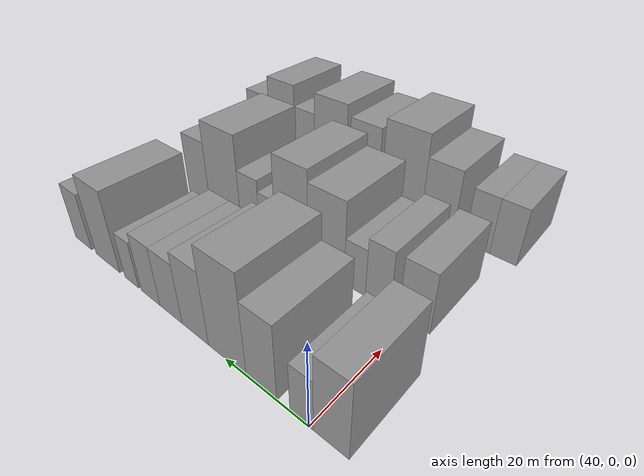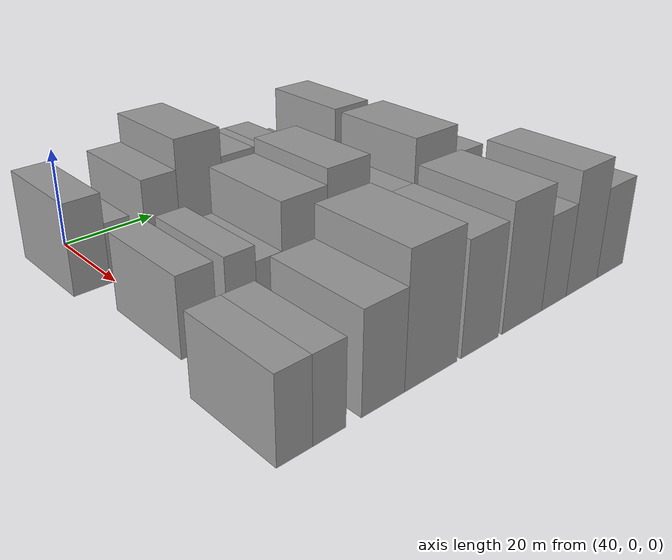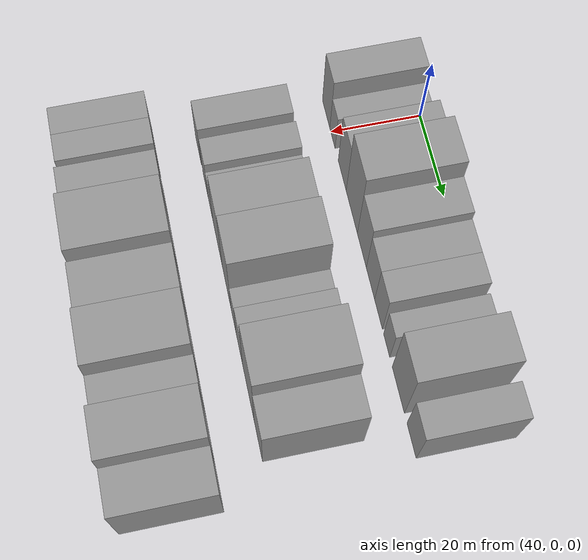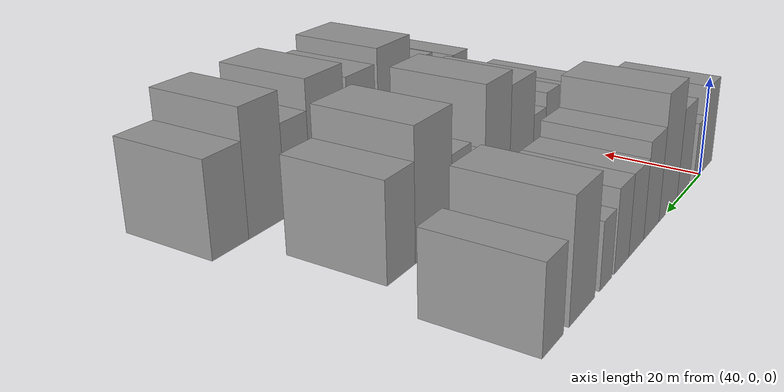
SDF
<sdf version="1.6">
 <world name="default">
  <model name="building_40">
   <static>1</static>
   <pose>50.0000 -4.5545 0 0.000000 0.000000 0.000000</pose>
   <link name="link">
    <pose>0 0 9.00 0 0 0</pose>
    <collision name="collision"><geometry><box><size>20.0000 7.2465 18.0000</size></box></geometry></collision>
    <visual name="visual">
     <cast_shadows>0</cast_shadows>
     <geometry><box><size>20.0000 7.2465 18.0000</size></box></geometry>
     <material>
      <script>
       <uri>model://grey_wall/materials/scripts</uri>
       <uri>model://grey_wall/materials/textures</uri>
       <name>vrc/grey_wall</name>
      </script>
     </material>
    </visual>
   </link>
  </model>
  <model name="building_41">
   <static>1</static>
   <pose>50.0000 1.6012 0 0.000000 0.000000 0.000000</pose>
   <link name="link">
    <pose>0 0 6.00 0 0 0</pose>
    <collision name="collision"><geometry><box><size>20.0000 5.0649 12.0000</size></box></geometry></collision>
    <visual name="visual">
     <cast_shadows>0</cast_shadows>
     <geometry><box><size>20.0000 5.0649 12.0000</size></box></geometry>
     <material>
      <script>
       <uri>model://grey_wall/materials/scripts</uri>
       <uri>model://grey_wall/materials/textures</uri>
       <name>vrc/grey_wall</name>
      </script>
     </material>
    </visual>
   </link>
  </model>
  <model name="building_42">
   <static>1</static>
   <pose>50.0000 10.8455 0 0.000000 0.000000 0.000000</pose>
   <link name="link">
    <pose>0 0 9.00 0 0 0</pose>
    <collision name="collision"><geometry><box><size>20.0000 7.4237 18.0000</size></box></geometry></collision>
    <visual name="visual">
     <cast_shadows>0</cast_shadows>
     <geometry><box><size>20.0000 7.4237 18.0000</size></box></geometry>
     <material>
      <script>
       <uri>model://grey_wall/materials/scripts</uri>
       <uri>model://grey_wall/materials/textures</uri>
       <name>vrc/grey_wall</name>
      </script>
     </material>
    </visual>
   </link>
  </model>
  <model name="building_43">
   <static>1</static>
   <pose>50.0000 19.6524 0 0.000000 0.000000 0.000000</pose>
   <link name="link">
    <pose>0 0 12.00 0 0 0</pose>
    <collision name="collision"><geometry><box><size>20.0000 10.1900 24.0000</size></box></geometry></collision>
    <visual name="visual">
     <cast_shadows>0</cast_shadows>
     <geometry><box><size>20.0000 10.1900 24.0000</size></box></geometry>
     <material>
      <script>
       <uri>model://grey_wall/materials/scripts</uri>
       <uri>model://grey_wall/materials/textures</uri>
       <name>vrc/grey_wall</name>
      </script>
     </material>
    </visual>
   </link>
  </model>
  <model name="building_44">
   <static>1</static>
   <pose>50.0000 28.7017 0 0.000000 0.000000 0.000000</pose>
   <link name="link">
    <pose>0 0 9.00 0 0 0</pose>
    <collision name="collision"><geometry><box><size>20.0000 7.9085 18.0000</size></box></geometry></collision>
    <visual name="visual">
     <cast_shadows>0</cast_shadows>
     <geometry><box><size>20.0000 7.9085 18.0000</size></box></geometry>
     <material>
      <script>
       <uri>model://grey_wall/materials/scripts</uri>
       <uri>model://grey_wall/materials/textures</uri>
       <name>vrc/grey_wall</name>
      </script>
     </material>
    </visual>
   </link>
  </model>
  <model name="building_45">
   <static>1</static>
   <pose>50.0000 36.2491 0 0.000000 0.000000 0.000000</pose>
   <link name="link">
    <pose>0 0 7.50 0 0 0</pose>
    <collision name="collision"><geometry><box><size>20.0000 7.1863 15.0000</size></box></geometry></collision>
    <visual name="visual">
     <cast_shadows>0</cast_shadows>
     <geometry><box><size>20.0000 7.1863 15.0000</size></box></geometry>
     <material>
      <script>
       <uri>model://grey_wall/materials/scripts</uri>
       <uri>model://grey_wall/materials/textures</uri>
       <name>vrc/grey_wall</name>
      </script>
     </material>
    </visual>
   </link>
  </model>
  <model name="building_46">
   <static>1</static>
   <pose>50.0000 43.0937 0 0.000000 0.000000 0.000000</pose>
   <link name="link">
    <pose>0 0 7.50 0 0 0</pose>
    <collision name="collision"><geometry><box><size>20.0000 6.5029 15.0000</size></box></geometry></collision>
    <visual name="visual">
     <cast_shadows>0</cast_shadows>
     <geometry><box><size>20.0000 6.5029 15.0000</size></box></geometry>
     <material>
      <script>
       <uri>model://grey_wall/materials/scripts</uri>
       <uri>model://grey_wall/materials/textures</uri>
       <name>vrc/grey_wall</name>
      </script>
     </material>
    </visual>
   </link>
  </model>
  <model name="building_47">
   <static>1</static>
   <pose>50.0000 49.8750 0 0.000000 0.000000 0.000000</pose>
   <link name="link">
    <pose>0 0 6.00 0 0 0</pose>
    <collision name="collision"><geometry><box><size>20.0000 5.0597 12.0000</size></box></geometry></collision>
    <visual name="visual">
     <cast_shadows>0</cast_shadows>
     <geometry><box><size>20.0000 5.0597 12.0000</size></box></geometry>
     <material>
      <script>
       <uri>model://grey_wall/materials/scripts</uri>
       <uri>model://grey_wall/materials/textures</uri>
       <name>vrc/grey_wall</name>
      </script>
     </material>
    </visual>
   </link>
  </model>
  <model name="building_48">
   <static>1</static>
   <pose>50.0000 59.2277 0 0.000000 0.000000 0.000000</pose>
   <link name="link">
    <pose>0 0 10.50 0 0 0</pose>
    <collision name="collision"><geometry><box><size>20.0000 9.6456 21.0000</size></box></geometry></collision>
    <visual name="visual">
     <cast_shadows>0</cast_shadows>
     <geometry><box><size>20.0000 9.6456 21.0000</size></box></geometry>
     <material>
      <script>
       <uri>model://grey_wall/materials/scripts</uri>
       <uri>model://grey_wall/materials/textures</uri>
       <name>vrc/grey_wall</name>
      </script>
     </material>
    </visual>
   </link>
  </model>
  <model name="building_49">
   <static>1</static>
   <pose>50.0000 69.5857 0 0.000000 0.000000 0.000000</pose>
   <link name="link">
    <pose>0 0 7.50 0 0 0</pose>
    <collision name="collision"><geometry><box><size>20.0000 7.0703 15.0000</size></box></geometry></collision>
    <visual name="visual">
     <cast_shadows>0</cast_shadows>
     <geometry><box><size>20.0000 7.0703 15.0000</size></box></geometry>
     <material>
      <script>
       <uri>model://grey_wall/materials/scripts</uri>
       <uri>model://grey_wall/materials/textures</uri>
       <name>vrc/grey_wall</name>
      </script>
     </material>
    </visual>
   </link>
  </model>
  <model name="building_115">
   <static>1</static>
   <pose>79.0000 -1.2076 0 0.000000 0.000000 0.000000</pose>
   <link name="link">
    <pose>0 0 7.50 0 0 0</pose>
    <collision name="collision"><geometry><box><size>20.0000 6.9950 15.0000</size></box></geometry></collision>
    <visual name="visual">
     <cast_shadows>0</cast_shadows>
     <geometry><box><size>20.0000 6.9950 15.0000</size></box></geometry>
     <material>
      <script>
       <uri>model://grey_wall/materials/scripts</uri>
       <uri>model://grey_wall/materials/textures</uri>
       <name>vrc/grey_wall</name>
      </script>
     </material>
    </visual>
   </link>
  </model>
  <model name="building_116">
   <static>1</static>
   <pose>79.0000 7.3624 0 0.000000 0.000000 0.000000</pose>
   <link name="link">
    <pose>0 0 7.50 0 0 0</pose>
    <collision name="collision"><geometry><box><size>20.0000 6.1451 15.0000</size></box></geometry></collision>
    <visual name="visual">
     <cast_shadows>0</cast_shadows>
     <geometry><box><size>20.0000 6.1451 15.0000</size></box></geometry>
     <material>
      <script>
       <uri>model://grey_wall/materials/scripts</uri>
       <uri>model://grey_wall/materials/textures</uri>
       <name>vrc/grey_wall</name>
      </script>
     </material>
    </visual>
   </link>
  </model>
  <model name="building_117">
   <static>1</static>
   <pose>79.0000 13.1839 0 0.000000 0.000000 0.000000</pose>
   <link name="link">
    <pose>0 0 6.00 0 0 0</pose>
    <collision name="collision"><geometry><box><size>20.0000 5.4977 12.0000</size></box></geometry></collision>
    <visual name="visual">
     <cast_shadows>0</cast_shadows>
     <geometry><box><size>20.0000 5.4977 12.0000</size></box></geometry>
     <material>
      <script>
       <uri>model://grey_wall/materials/scripts</uri>
       <uri>model://grey_wall/materials/textures</uri>
       <name>vrc/grey_wall</name>
      </script>
     </material>
    </visual>
   </link>
  </model>
  <model name="building_118">
   <static>1</static>
   <pose>79.0000 21.0036 0 0.000000 0.000000 0.000000</pose>
   <link name="link">
    <pose>0 0 10.50 0 0 0</pose>
    <collision name="collision"><geometry><box><size>20.0000 10.1417 21.0000</size></box></geometry></collision>
    <visual name="visual">
     <cast_shadows>0</cast_shadows>
     <geometry><box><size>20.0000 10.1417 21.0000</size></box></geometry>
     <material>
      <script>
       <uri>model://grey_wall/materials/scripts</uri>
       <uri>model://grey_wall/materials/textures</uri>
       <name>vrc/grey_wall</name>
      </script>
     </material>
    </visual>
   </link>
  </model>
  <model name="building_119">
   <static>1</static>
   <pose>79.0000 31.0700 0 0.000000 0.000000 0.000000</pose>
   <link name="link">
    <pose>0 0 12.00 0 0 0</pose>
    <collision name="collision"><geometry><box><size>20.0000 9.9912 24.0000</size></box></geometry></collision>
    <visual name="visual">
     <cast_shadows>0</cast_shadows>
     <geometry><box><size>20.0000 9.9912 24.0000</size></box></geometry>
     <material>
      <script>
       <uri>model://grey_wall/materials/scripts</uri>
       <uri>model://grey_wall/materials/textures</uri>
       <name>vrc/grey_wall</name>
      </script>
     </material>
    </visual>
   </link>
  </model>
  <model name="building_120">
   <static>1</static>
   <pose>79.0000 38.6717 0 0.000000 0.000000 0.000000</pose>
   <link name="link">
    <pose>0 0 6.00 0 0 0</pose>
    <collision name="collision"><geometry><box><size>20.0000 5.2122 12.0000</size></box></geometry></collision>
    <visual name="visual">
     <cast_shadows>0</cast_shadows>
     <geometry><box><size>20.0000 5.2122 12.0000</size></box></geometry>
     <material>
      <script>
       <uri>model://grey_wall/materials/scripts</uri>
       <uri>model://grey_wall/materials/textures</uri>
       <name>vrc/grey_wall</name>
      </script>
     </material>
    </visual>
   </link>
  </model>
  <model name="building_121">
   <static>1</static>
   <pose>79.0000 44.5688 0 0.000000 0.000000 0.000000</pose>
   <link name="link">
    <pose>0 0 7.50 0 0 0</pose>
    <collision name="collision"><geometry><box><size>20.0000 6.5822 15.0000</size></box></geometry></collision>
    <visual name="visual">
     <cast_shadows>0</cast_shadows>
     <geometry><box><size>20.0000 6.5822 15.0000</size></box></geometry>
     <material>
      <script>
       <uri>model://grey_wall/materials/scripts</uri>
       <uri>model://grey_wall/materials/textures</uri>
       <name>vrc/grey_wall</name>
      </script>
     </material>
    </visual>
   </link>
  </model>
  <model name="building_122">
   <static>1</static>
   <pose>79.0000 53.6694 0 0.000000 0.000000 0.000000</pose>
   <link name="link">
    <pose>0 0 12.00 0 0 0</pose>
    <collision name="collision"><geometry><box><size>20.0000 11.6189 24.0000</size></box></geometry></collision>
    <visual name="visual">
     <cast_shadows>0</cast_shadows>
     <geometry><box><size>20.0000 11.6189 24.0000</size></box></geometry>
     <material>
      <script>
       <uri>model://grey_wall/materials/scripts</uri>
       <uri>model://grey_wall/materials/textures</uri>
       <name>vrc/grey_wall</name>
      </script>
     </material>
    </visual>
   </link>
  </model>
  <model name="building_123">
   <static>1</static>
   <pose>79.0000 63.5984 0 0.000000 0.000000 0.000000</pose>
   <link name="link">
    <pose>0 0 9.00 0 0 0</pose>
    <collision name="collision"><geometry><box><size>20.0000 8.2392 18.0000</size></box></geometry></collision>
    <visual name="visual">
     <cast_shadows>0</cast_shadows>
     <geometry><box><size>20.0000 8.2392 18.0000</size></box></geometry>
     <material>
      <script>
       <uri>model://grey_wall/materials/scripts</uri>
       <uri>model://grey_wall/materials/textures</uri>
       <name>vrc/grey_wall</name>
      </script>
     </material>
    </visual>
   </link>
  </model>
  <model name="building_189">
   <static>1</static>
   <pose>108.0000 -5.8911 0 0.000000 0.000000 0.000000</pose>
   <link name="link">
    <pose>0 0 7.50 0 0 0</pose>
    <collision name="collision"><geometry><box><size>20.0000 6.3352 15.0000</size></box></geometry></collision>
    <visual name="visual">
     <cast_shadows>0</cast_shadows>
     <geometry><box><size>20.0000 6.3352 15.0000</size></box></geometry>
     <material>
      <script>
       <uri>model://grey_wall/materials/scripts</uri>
       <uri>model://grey_wall/materials/textures</uri>
       <name>vrc/grey_wall</name>
      </script>
     </material>
    </visual>
   </link>
  </model>
  <model name="building_190">
   <static>1</static>
   <pose>108.0000 0.3628 0 0.000000 0.000000 0.000000</pose>
   <link name="link">
    <pose>0 0 7.50 0 0 0</pose>
    <collision name="collision"><geometry><box><size>20.0000 6.1725 15.0000</size></box></geometry></collision>
    <visual name="visual">
     <cast_shadows>0</cast_shadows>
     <geometry><box><size>20.0000 6.1725 15.0000</size></box></geometry>
     <material>
      <script>
       <uri>model://grey_wall/materials/scripts</uri>
       <uri>model://grey_wall/materials/textures</uri>
       <name>vrc/grey_wall</name>
      </script>
     </material>
    </visual>
   </link>
  </model>
  <model name="building_191">
   <static>1</static>
   <pose>108.0000 10.8819 0 0.000000 0.000000 0.000000</pose>
   <link name="link">
    <pose>0 0 9.00 0 0 0</pose>
    <collision name="collision"><geometry><box><size>20.0000 8.8657 18.0000</size></box></geometry></collision>
    <visual name="visual">
     <cast_shadows>0</cast_shadows>
     <geometry><box><size>20.0000 8.8657 18.0000</size></box></geometry>
     <material>
      <script>
       <uri>model://grey_wall/materials/scripts</uri>
       <uri>model://grey_wall/materials/textures</uri>
       <name>vrc/grey_wall</name>
      </script>
     </material>
    </visual>
   </link>
  </model>
  <model name="building_192">
   <static>1</static>
   <pose>108.0000 21.2662 0 0.000000 0.000000 0.000000</pose>
   <link name="link">
    <pose>0 0 12.00 0 0 0</pose>
    <collision name="collision"><geometry><box><size>20.0000 11.9030 24.0000</size></box></geometry></collision>
    <visual name="visual">
     <cast_shadows>0</cast_shadows>
     <geometry><box><size>20.0000 11.9030 24.0000</size></box></geometry>
     <material>
      <script>
       <uri>model://grey_wall/materials/scripts</uri>
       <uri>model://grey_wall/materials/textures</uri>
       <name>vrc/grey_wall</name>
      </script>
     </material>
    </visual>
   </link>
  </model>
  <model name="building_193">
   <static>1</static>
   <pose>108.0000 32.9085 0 0.000000 0.000000 0.000000</pose>
   <link name="link">
    <pose>0 0 10.50 0 0 0</pose>
    <collision name="collision"><geometry><box><size>20.0000 9.3816 21.0000</size></box></geometry></collision>
    <visual name="visual">
     <cast_shadows>0</cast_shadows>
     <geometry><box><size>20.0000 9.3816 21.0000</size></box></geometry>
     <material>
      <script>
       <uri>model://grey_wall/materials/scripts</uri>
       <uri>model://grey_wall/materials/textures</uri>
       <name>vrc/grey_wall</name>
      </script>
     </material>
    </visual>
   </link>
  </model>
  <model name="building_194">
   <static>1</static>
   <pose>108.0000 44.0989 0 0.000000 0.000000 0.000000</pose>
   <link name="link">
    <pose>0 0 12.00 0 0 0</pose>
    <collision name="collision"><geometry><box><size>20.0000 10.9993 24.0000</size></box></geometry></collision>
    <visual name="visual">
     <cast_shadows>0</cast_shadows>
     <geometry><box><size>20.0000 10.9993 24.0000</size></box></geometry>
     <material>
      <script>
       <uri>model://grey_wall/materials/scripts</uri>
       <uri>model://grey_wall/materials/textures</uri>
       <name>vrc/grey_wall</name>
      </script>
     </material>
    </visual>
   </link>
  </model>
  <model name="building_195">
   <static>1</static>
   <pose>108.0000 53.2480 0 0.000000 0.000000 0.000000</pose>
   <link name="link">
    <pose>0 0 9.00 0 0 0</pose>
    <collision name="collision"><geometry><box><size>20.0000 7.2990 18.0000</size></box></geometry></collision>
    <visual name="visual">
     <cast_shadows>0</cast_shadows>
     <geometry><box><size>20.0000 7.2990 18.0000</size></box></geometry>
     <material>
      <script>
       <uri>model://grey_wall/materials/scripts</uri>
       <uri>model://grey_wall/materials/textures</uri>
       <name>vrc/grey_wall</name>
      </script>
     </material>
    </visual>
   </link>
  </model>
  <model name="building_196">
   <static>1</static>
   <pose>108.0000 61.8257 0 0.000000 0.000000 0.000000</pose>
   <link name="link">
    <pose>0 0 12.00 0 0 0</pose>
    <collision name="collision"><geometry><box><size>20.0000 9.8564 24.0000</size></box></geometry></collision>
    <visual name="visual">
     <cast_shadows>0</cast_shadows>
     <geometry><box><size>20.0000 9.8564 24.0000</size></box></geometry>
     <material>
      <script>
       <uri>model://grey_wall/materials/scripts</uri>
       <uri>model://grey_wall/materials/textures</uri>
       <name>vrc/grey_wall</name>
      </script>
     </material>
    </visual>
   </link>
  </model>
  <model name="building_197">
   <static>1</static>
   <pose>108.0000 71.1805 0 0.000000 0.000000 0.000000</pose>
   <link name="link">
    <pose>0 0 9.00 0 0 0</pose>
    <collision name="collision"><geometry><box><size>20.0000 8.8531 18.0000</size></box></geometry></collision>
    <visual name="visual">
     <cast_shadows>0</cast_shadows>
     <geometry><box><size>20.0000 8.8531 18.0000</size></box></geometry>
     <material>
      <script>
       <uri>model://grey_wall/materials/scripts</uri>
       <uri>model://grey_wall/materials/textures</uri>
       <name>vrc/grey_wall</name>
      </script>
     </material>
    </visual>
   </link>
  </model>
 </world>
</sdf>
